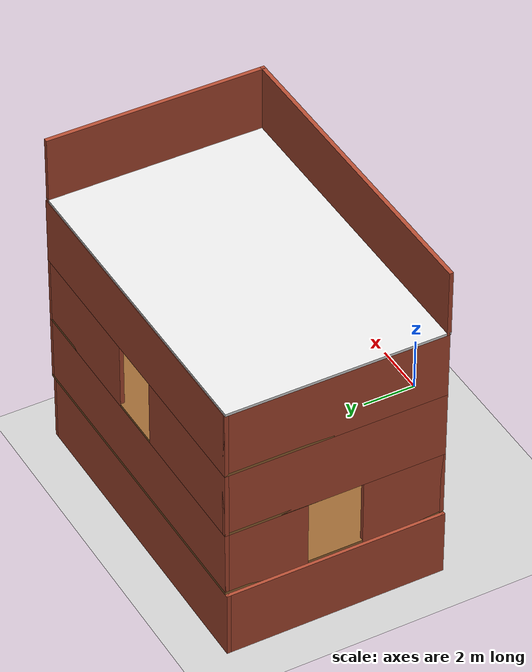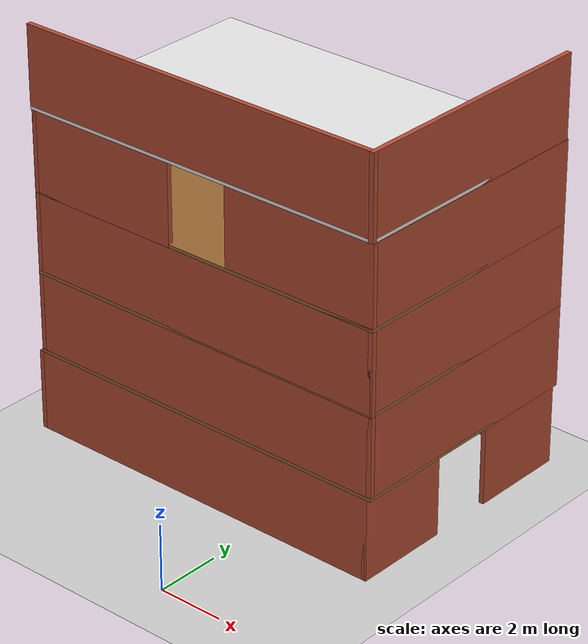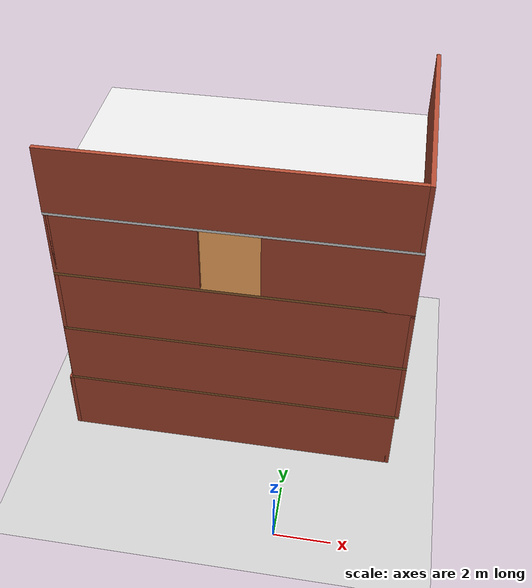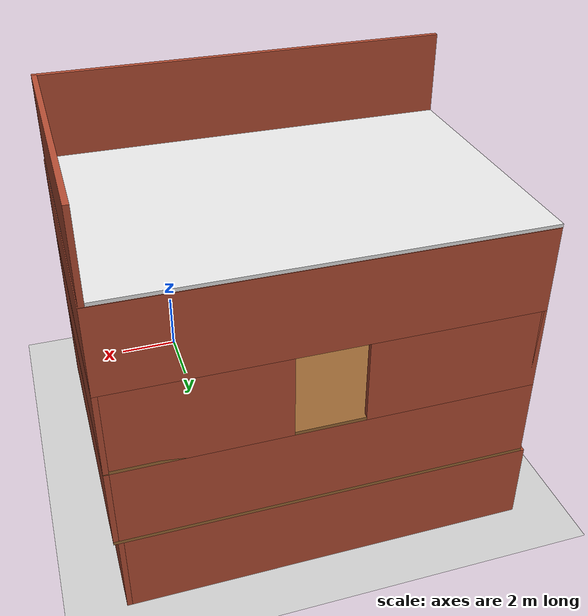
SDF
<sdf version="1.5">
 <world name="default">
  <plugin name="gazebo_ros_state" filename="libgazebo_ros_state.so">
   <ros>
    <namespace>/demo</namespace>
    <remapping>model_states:=model_states_demo</remapping>
    <remapping>link_states:=link_states_demo</remapping>
   </ros>
   <update_rate>10.0</update_rate>
  </plugin>
  <scene><sky><sunset>20</sunset></sky></scene>
  <include><uri>model://sun</uri></include>
  <include><uri>model://ground_plane</uri></include>
  <model name="tower">
   <pose>5 5 0 0 0 0</pose>
   <include><static>true</static><uri>model://tower</uri></include>
  </model>
  <model name="unit_box_0">
   <pose>0.16 4.42 1.0 1.570755 -0 0</pose>
   <link name="link">
    <inertial>
     <mass>1</mass>
     <inertia>
      <ixx>0.166667</ixx>
      <ixy>0</ixy>
      <ixz>0</ixz>
      <iyy>0.166667</iyy>
      <iyz>0</iyz>
      <izz>0.166667</izz>
     </inertia>
    </inertial>
    <collision name="collision"><geometry><box><size>1 2.0 0.3</size></box></geometry></collision>
    <visual name="visual">
     <geometry><box><size>1 2.0 0.3</size></box></geometry>
     <material>
      <script><name>Gazebo/Grey</name><uri>file://media/materials/scripts/gazebo.material</uri></script>
     </material>
    </visual>
   </link>
  </model>
  <model name="unit_box_1">
   <pose>-7.155 4.672 3.60001 1.570755 -0 0</pose>
   <link name="link">
    <inertial>
     <mass>1</mass>
     <inertia>
      <ixx>0.166667</ixx>
      <ixy>0</ixy>
      <ixz>0</ixz>
      <iyy>0.166667</iyy>
      <iyz>0</iyz>
      <izz>0.166667</izz>
     </inertia>
    </inertial>
    <collision name="collision"><geometry><box><size>1 2.0 0.5</size></box></geometry></collision>
    <visual name="visual">
     <geometry><box><size>1 2.0 0.5</size></box></geometry>
     <material>
      <script><name>Gazebo/Grey</name><uri>file://media/materials/scripts/gazebo.material</uri></script>
     </material>
    </visual>
   </link>
  </model>
 </world>
</sdf>

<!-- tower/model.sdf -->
<sdf version='1.8'>
  <model name='tower'>
    <pose>-6.62818 2.78501 0 0 -0 0</pose>
    <link name='Floor_0'>
      <collision name='Floor_0_Collision'>
        <geometry>
          <box>
            <size>12 8.00013 0.1</size>
          </box>
        </geometry>
        <pose>0 0 0.05 0 -0 0</pose>
      </collision>
      <visual name='Floor_0_Visual'>
        <pose>0 0 0.05 0 -0 0</pose>
        <geometry>
          <box>
            <size>12 8.00013 0.1</size>
          </box>
        </geometry>
        <material>
          <ambient>0.6 0.4 0.2 1</ambient>
          <diffuse>0.6 0.4 0.2 1</diffuse>
          <specular>0.1 0.1 0.1 1</specular>
        </material>
        <meta>
          <layer>1</layer>
        </meta>
      </visual>
      <pose>-0.508178 0.009968 2.5 0 -0 0</pose>
    </link>
    <link name='Floor_1'>
      <collision name='Floor_1_Collision'>
        <geometry>
          <box>
            <size>12 8 0.1</size>
          </box>
        </geometry>
        <pose>0 0 0.05 0 -0 0</pose>
      </collision>
      <visual name='Floor_1_Visual'>
        <pose>0 0 0.05 0 -0 0</pose>
        <geometry>
          <box>
            <size>12 8 0.1</size>
          </box>
        </geometry>
        <material>
          <ambient>0.6 0.4 0.2 1</ambient>
          <diffuse>0.6 0.4 0.2 1</diffuse>
          <specular>0.1 0.1 0.1 1</specular>
        </material>
        <meta>
          <layer>2</layer>
        </meta>
      </visual>
      <pose>-0.508178 0.009968 5 0 -0 0</pose>
    </link>
    <link name='Floor_2'>
      <collision name='Floor_2_Collision'>
        <geometry>
          <box>
            <size>12 8 0.1</size>
          </box>
        </geometry>
        <pose>0 0 0.05 0 -0 0</pose>
      </collision>
      <visual name='Floor_2_Visual'>
        <pose>0 0 0.05 0 -0 0</pose>
        <geometry>
          <box>
            <size>12 8 0.1</size>
          </box>
        </geometry>
        <material>
          <ambient>0.6 0.4 0.2 1</ambient>
          <diffuse>0.6 0.4 0.2 1</diffuse>
          <specular>0.1 0.1 0.1 1</specular>
        </material>
        <meta>
          <layer>3</layer>
        </meta>
      </visual>
      <pose>-0.508178 0.009968 7.5 0 -0 0</pose>
    </link>
    <link name='Floor_4'>
      <collision name='Floor_4_Collision'>
        <geometry>
          <box>
            <size>12 8 0.1</size>
          </box>
        </geometry>
        <pose>0 0 0.05 0 -0 0</pose>
      </collision>
      <visual name='Floor_4_Visual'>
        <pose>0 0 0.05 0 -0 0</pose>
        <geometry>
          <box>
            <size>12 8 0.1</size>
          </box>
        </geometry>
        <material>
          <ambient>0.9 0.9 0.9 1</ambient>
          <diffuse>0.9 0.9 0.9 1</diffuse>
          <specular>0.2 0.2 0.2 1</specular>
        </material>
        <meta>
          <layer>4</layer>
        </meta>
      </visual>
      <pose>-0.528178 -0.010032 10 0 -0 0</pose>
    </link>
    <link name='Wall_0'>
      <collision name='Wall_0_Collision'>
        <geometry>
          <box>
            <size>12 0.15 2.5</size>
          </box>
        </geometry>
        <pose>0 0 1.25 0 -0 0</pose>
      </collision>
      <visual name='Wall_0_Visual'>
        <pose>0 0 1.25 0 -0 0</pose>
        <geometry>
          <box>
            <size>12 0.15 2.5</size>
          </box>
        </geometry>
        <material>
          <ambient>0.7 0.3 0.2 1</ambient>
          <diffuse>0.7 0.3 0.2 1</diffuse>
          <specular>0.1 0.1 0.1 1</specular>
        </material>
        <meta>
          <layer>0</layer>
        </meta>
      </visual>
      <pose>-0.628178 3.93497 0 0 -0 3.14159</pose>
    </link>
    <link name='Wall_10'>
      <collision name='Wall_10_Collision'>
        <geometry>
          <box>
            <size>12 0.15 2.5</size>
          </box>
        </geometry>
        <pose>0 0 1.25 0 -0 0</pose>
      </collision>
      <visual name='Wall_10_Visual'>
        <pose>0 0 1.25 0 -0 0</pose>
        <geometry>
          <box>
            <size>12 0.15 2.5</size>
          </box>
        </geometry>
        <material>
          <ambient>0.7 0.3 0.2 1</ambient>
          <diffuse>0.7 0.3 0.2 1</diffuse>
          <specular>0.1 0.1 0.1 1</specular>
        </material>
        <meta>
          <layer>1</layer>
        </meta>
      </visual>
      <pose>-0.508178 -3.91503 2.5 0 -0 0</pose>
    </link>
    <link name='Wall_12'>
      <collision name='Wall_12_Collision'>
        <geometry>
          <box>
            <size>8 0.15 2.5</size>
          </box>
        </geometry>
        <pose>0 0 1.25 0 -0 0</pose>
      </collision>
      <visual name='Wall_12_Visual'>
        <pose>0 0 1.25 0 -0 0</pose>
        <geometry>
          <box>
            <size>8 0.15 2.5</size>
          </box>
        </geometry>
        <material>
          <ambient>0.7 0.3 0.2 1</ambient>
          <diffuse>0.7 0.3 0.2 1</diffuse>
          <specular>0.1 0.1 0.1 1</specular>
        </material>
        <meta>
          <layer>1</layer>
        </meta>
      </visual>
      <pose>5.41682 0.009968 2.5 0 -0 -1.5708</pose>
    </link>
    <link name='Wall_13'>
      <collision name='Wall_13_Collision'>
        <geometry>
          <box>
            <size>3 0.15 2.5</size>
          </box>
        </geometry>
        <pose>0 0 1.25 0 -0 0</pose>
      </collision>
      <visual name='Wall_13_Visual'>
        <pose>0 0 1.25 0 -0 0</pose>
        <geometry>
          <box>
            <size>3 0.15 2.5</size>
          </box>
        </geometry>
        <material>
          <ambient>0.7 0.3 0.2 1</ambient>
          <diffuse>0.7 0.3 0.2 1</diffuse>
          <specular>0.1 0.1 0.1 1</specular>
        </material>
        <meta>
          <layer>1</layer>
        </meta>
      </visual>
      <pose>-6.43318 2.50997 2.5 0 -0 -1.5708</pose>
    </link>
    <link name='Wall_15'>
      <collision name='Wall_15_Collision'>
        <geometry>
          <box>
            <size>3 0.15 2.5</size>
          </box>
        </geometry>
        <pose>0 0 1.25 0 -0 0</pose>
      </collision>
      <visual name='Wall_15_Visual'>
        <pose>0 0 1.25 0 -0 0</pose>
        <geometry>
          <box>
            <size>3 0.15 2.5</size>
          </box>
        </geometry>
        <material>
          <ambient>0.7 0.3 0.2 1</ambient>
          <diffuse>0.7 0.3 0.2 1</diffuse>
          <specular>0.1 0.1 0.1 1</specular>
        </material>
        <meta>
          <layer>1</layer>
        </meta>
      </visual>
      <pose>-6.43318 -2.49003 2.5 0 -0 1.5708</pose>
    </link>
    <link name='Wall_18'>
      <collision name='Wall_18_Collision'>
        <geometry>
          <box>
            <size>12 0.15 2.5</size>
          </box>
        </geometry>
        <pose>0 0 1.25 0 -0 0</pose>
      </collision>
      <visual name='Wall_18_Visual'>
        <pose>0 0 1.25 0 -0 0</pose>
        <geometry>
          <box>
            <size>12 0.15 2.5</size>
          </box>
        </geometry>
        <material>
          <ambient>0.7 0.3 0.2 1</ambient>
          <diffuse>0.7 0.3 0.2 1</diffuse>
          <specular>0.1 0.1 0.1 1</specular>
        </material>
        <meta>
          <layer>2</layer>
        </meta>
      </visual>
      <pose>-0.508178 -3.91503 5 0 -0 0</pose>
    </link>
    <link name='Wall_19'>
      <collision name='Wall_19_Collision'>
        <geometry>
          <box>
            <size>8 0.15 2.5</size>
          </box>
        </geometry>
        <pose>0 0 1.25 0 -0 0</pose>
      </collision>
      <visual name='Wall_19_Visual'>
        <pose>0 0 1.25 0 -0 0</pose>
        <geometry>
          <box>
            <size>8 0.15 2.5</size>
          </box>
        </geometry>
        <material>
          <ambient>0.7 0.3 0.2 1</ambient>
          <diffuse>0.7 0.3 0.2 1</diffuse>
          <specular>0.1 0.1 0.1 1</specular>
        </material>
        <meta>
          <layer>2</layer>
        </meta>
      </visual>
      <pose>5.41682 0.009969 5 0 -0 -1.5708</pose>
    </link>
    <link name='Wall_2'>
      <collision name='Wall_2_Collision'>
        <geometry>
          <box>
            <size>8 0.15 2.5</size>
          </box>
        </geometry>
        <pose>0 0 1.25 0 -0 0</pose>
      </collision>
      <visual name='Wall_2_Visual'>
        <pose>0 0 1.25 0 -0 0</pose>
        <geometry>
          <box>
            <size>8 0.15 2.5</size>
          </box>
        </geometry>
        <material>
          <ambient>0.7 0.3 0.2 1</ambient>
          <diffuse>0.7 0.3 0.2 1</diffuse>
          <specular>0.1 0.1 0.1 1</specular>
        </material>
        <meta>
          <layer>0</layer>
        </meta>
      </visual>
      <pose>-6.55318 0.009968 0 0 -0 -1.5708</pose>
    </link>
    <link name='Wall_20'>
      <collision name='Wall_20_Collision'>
        <geometry>
          <box>
            <size>8 0.15 2.5</size>
          </box>
        </geometry>
        <pose>0 0 1.25 0 -0 0</pose>
      </collision>
      <visual name='Wall_20_Visual'>
        <pose>0 0 1.25 0 -0 0</pose>
        <geometry>
          <box>
            <size>8 0.15 2.5</size>
          </box>
        </geometry>
        <material>
          <ambient>0.7 0.3 0.2 1</ambient>
          <diffuse>0.7 0.3 0.2 1</diffuse>
          <specular>0.1 0.1 0.1 1</specular>
        </material>
        <meta>
          <layer>2</layer>
        </meta>
      </visual>
      <pose>-6.43318 0.009968 5 0 -0 -1.5708</pose>
    </link>
    <link name='Wall_24'>
      <collision name='Wall_24_Collision'>
        <geometry>
          <box>
            <size>5 0.15 2.5</size>
          </box>
        </geometry>
        <pose>0 0 1.25 0 -0 0</pose>
      </collision>
      <visual name='Wall_24_Visual'>
        <pose>0 0 1.25 0 -0 0</pose>
        <geometry>
          <box>
            <size>5 0.15 2.5</size>
          </box>
        </geometry>
        <material>
          <ambient>0.7 0.3 0.2 1</ambient>
          <diffuse>0.7 0.3 0.2 1</diffuse>
          <specular>0.1 0.1 0.1 1</specular>
        </material>
        <meta>
          <layer>2</layer>
        </meta>
      </visual>
      <pose>-4.00818 3.93497 5 0 -0 0</pose>
    </link>
    <link name='Wall_26'>
      <collision name='Wall_26_Collision'>
        <geometry>
          <box>
            <size>5 0.15 2.5</size>
          </box>
        </geometry>
        <pose>0 0 1.25 0 -0 0</pose>
      </collision>
      <visual name='Wall_26_Visual'>
        <pose>0 0 1.25 0 -0 0</pose>
        <geometry>
          <box>
            <size>5 0.15 2.5</size>
          </box>
        </geometry>
        <material>
          <ambient>0.7 0.3 0.2 1</ambient>
          <diffuse>0.7 0.3 0.2 1</diffuse>
          <specular>0.1 0.1 0.1 1</specular>
        </material>
        <meta>
          <layer>2</layer>
        </meta>
      </visual>
      <pose>2.99182 3.93497 5 0 -0 3.14159</pose>
    </link>
    <link name='Wall_29'>
      <collision name='Wall_29_Collision'>
        <geometry>
          <box>
            <size>8 0.15 2.5</size>
          </box>
        </geometry>
        <pose>0 0 1.25 0 -0 0</pose>
      </collision>
      <visual name='Wall_29_Visual'>
        <pose>0 0 1.25 0 -0 0</pose>
        <geometry>
          <box>
            <size>8 0.15 2.5</size>
          </box>
        </geometry>
        <material>
          <ambient>0.7 0.3 0.2 1</ambient>
          <diffuse>0.7 0.3 0.2 1</diffuse>
          <specular>0.1 0.1 0.1 1</specular>
        </material>
        <meta>
          <layer>3</layer>
        </meta>
      </visual>
      <pose>5.41682 0.009968 7.5 0 -0 -1.5708</pose>
    </link>
    <link name='Wall_3'>
      <collision name='Wall_3_Collision'>
        <geometry>
          <box>
            <size>12 0.15 2.5</size>
          </box>
        </geometry>
        <pose>0 0 1.25 0 -0 0</pose>
      </collision>
      <visual name='Wall_3_Visual'>
        <pose>0 0 1.25 0 -0 0</pose>
        <geometry>
          <box>
            <size>12 0.15 2.5</size>
          </box>
        </geometry>
        <material>
          <ambient>0.7 0.3 0.2 1</ambient>
          <diffuse>0.7 0.3 0.2 1</diffuse>
          <specular>0.1 0.1 0.1 1</specular>
        </material>
        <meta>
          <layer>0</layer>
        </meta>
      </visual>
      <pose>-0.628178 -3.91503 0 0 -0 0</pose>
    </link>
    <link name='Wall_30'>
      <collision name='Wall_30_Collision'>
        <geometry>
          <box>
            <size>8 0.15 2.5</size>
          </box>
        </geometry>
        <pose>0 0 1.25 0 -0 0</pose>
      </collision>
      <visual name='Wall_30_Visual'>
        <pose>0 0 1.25 0 -0 0</pose>
        <geometry>
          <box>
            <size>8 0.15 2.5</size>
          </box>
        </geometry>
        <material>
          <ambient>0.7 0.3 0.2 1</ambient>
          <diffuse>0.7 0.3 0.2 1</diffuse>
          <specular>0.1 0.1 0.1 1</specular>
        </material>
        <meta>
          <layer>3</layer>
        </meta>
      </visual>
      <pose>-6.43318 0.009969 7.5 0 -0 -1.5708</pose>
    </link>
    <link name='Wall_33'>
      <collision name='Wall_33_Collision'>
        <geometry>
          <box>
            <size>12 0.15 2.5</size>
          </box>
        </geometry>
        <pose>0 0 1.25 0 -0 0</pose>
      </collision>
      <visual name='Wall_33_Visual'>
        <pose>0 0 1.25 0 -0 0</pose>
        <geometry>
          <box>
            <size>12 0.15 2.5</size>
          </box>
        </geometry>
        <material>
          <ambient>0.7 0.3 0.2 1</ambient>
          <diffuse>0.7 0.3 0.2 1</diffuse>
          <specular>0.1 0.1 0.1 1</specular>
        </material>
        <meta>
          <layer>3</layer>
        </meta>
      </visual>
      <pose>-0.508178 3.93497 7.5 0 -0 0</pose>
    </link>
    <link name='Wall_35'>
      <collision name='Wall_35_Collision'>
        <geometry>
          <box>
            <size>5 0.15 2.5</size>
          </box>
        </geometry>
        <pose>0 0 1.25 0 -0 0</pose>
      </collision>
      <visual name='Wall_35_Visual'>
        <pose>0 0 1.25 0 -0 0</pose>
        <geometry>
          <box>
            <size>5 0.15 2.5</size>
          </box>
        </geometry>
        <material>
          <ambient>0.7 0.3 0.2 1</ambient>
          <diffuse>0.7 0.3 0.2 1</diffuse>
          <specular>0.1 0.1 0.1 1</specular>
        </material>
        <meta>
          <layer>3</layer>
        </meta>
      </visual>
      <pose>-4.00818 -3.91503 7.5 0 -0 0</pose>
    </link>
    <link name='Wall_37'>
      <collision name='Wall_37_Collision'>
        <geometry>
          <box>
            <size>5 0.15 2.5</size>
          </box>
        </geometry>
        <pose>0 0 1.25 0 -0 0</pose>
      </collision>
      <visual name='Wall_37_Visual'>
        <pose>0 0 1.25 0 -0 0</pose>
        <geometry>
          <box>
            <size>5 0.15 2.5</size>
          </box>
        </geometry>
        <material>
          <ambient>0.7 0.3 0.2 1</ambient>
          <diffuse>0.7 0.3 0.2 1</diffuse>
          <specular>0.1 0.1 0.1 1</specular>
        </material>
        <meta>
          <layer>3</layer>
        </meta>
      </visual>
      <pose>2.99182 -3.91503 7.5 0 -0 3.14159</pose>
    </link>
    <link name='Wall_4'>
      <collision name='Wall_4_Collision'>
        <geometry>
          <box>
            <size>3 0.15 2.5</size>
          </box>
        </geometry>
        <pose>0 0 1.25 0 -0 0</pose>
      </collision>
      <visual name='Wall_4_Visual'>
        <pose>0 0 1.25 0 -0 0</pose>
        <geometry>
          <box>
            <size>3 0.15 2.5</size>
          </box>
        </geometry>
        <material>
          <ambient>0.7 0.3 0.2 1</ambient>
          <diffuse>0.7 0.3 0.2 1</diffuse>
          <specular>0.1 0.1 0.1 1</specular>
        </material>
        <meta>
          <layer>0</layer>
        </meta>
      </visual>
      <pose>5.29682 -2.49003 0 0 -0 1.5708</pose>
    </link>
    <link name='Wall_51'>
      <collision name='Wall_51_Collision'>
        <geometry>
          <box>
            <size>12 0.15 2.5</size>
          </box>
        </geometry>
        <pose>0 0 1.25 0 -0 0</pose>
      </collision>
      <visual name='Wall_51_Visual'>
        <pose>0 0 1.25 0 -0 0</pose>
        <geometry>
          <box>
            <size>12 0.15 2.5</size>
          </box>
        </geometry>
        <material>
          <ambient>0.7 0.3 0.2 1</ambient>
          <diffuse>0.7 0.3 0.2 1</diffuse>
          <specular>0.1 0.1 0.1 1</specular>
        </material>
        <meta>
          <layer>4</layer>
        </meta>
      </visual>
      <pose>-0.528178 -3.93503 10 0 -0 0</pose>
    </link>
    <link name='Wall_53'>
      <collision name='Wall_53_Collision'>
        <geometry>
          <box>
            <size>8 0.15 2.5</size>
          </box>
        </geometry>
        <pose>0 0 1.25 0 -0 0</pose>
      </collision>
      <visual name='Wall_53_Visual'>
        <pose>0 0 1.25 0 -0 0</pose>
        <geometry>
          <box>
            <size>8 0.15 2.5</size>
          </box>
        </geometry>
        <material>
          <ambient>0.7 0.3 0.2 1</ambient>
          <diffuse>0.7 0.3 0.2 1</diffuse>
          <specular>0.1 0.1 0.1 1</specular>
        </material>
        <meta>
          <layer>4</layer>
        </meta>
      </visual>
      <pose>5.39682 -0.010032 10 0 -0 -1.5708</pose>
    </link>
    <link name='Wall_6'>
      <collision name='Wall_6_Collision'>
        <geometry>
          <box>
            <size>3 0.15 2.5</size>
          </box>
        </geometry>
        <pose>0 0 1.25 0 -0 0</pose>
      </collision>
      <visual name='Wall_6_Visual'>
        <pose>0 0 1.25 0 -0 0</pose>
        <geometry>
          <box>
            <size>3 0.15 2.5</size>
          </box>
        </geometry>
        <material>
          <ambient>0.7 0.3 0.2 1</ambient>
          <diffuse>0.7 0.3 0.2 1</diffuse>
          <specular>0.1 0.1 0.1 1</specular>
        </material>
        <meta>
          <layer>0</layer>
        </meta>
      </visual>
      <pose>5.29682 2.50997 0 0 -0 -1.5708</pose>
    </link>
    <link name='Wall_8'>
      <collision name='Wall_8_Collision'>
        <geometry>
          <box>
            <size>12 0.15 2.5</size>
          </box>
        </geometry>
        <pose>0 0 1.25 0 -0 0</pose>
      </collision>
      <visual name='Wall_8_Visual'>
        <pose>0 0 1.25 0 -0 0</pose>
        <geometry>
          <box>
            <size>12 0.15 2.5</size>
          </box>
        </geometry>
        <material>
          <ambient>0.7 0.3 0.2 1</ambient>
          <diffuse>0.7 0.3 0.2 1</diffuse>
          <specular>0.1 0.1 0.1 1</specular>
        </material>
        <meta>
          <layer>1</layer>
        </meta>
      </visual>
      <pose>-0.508178 3.93497 2.5 0 -0 3.14159</pose>
    </link>
    <static>1</static>
  </model>
</sdf>
